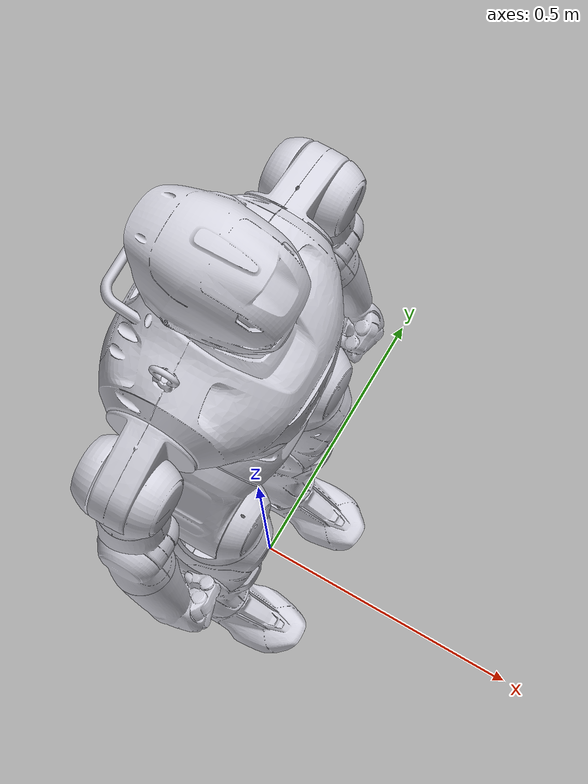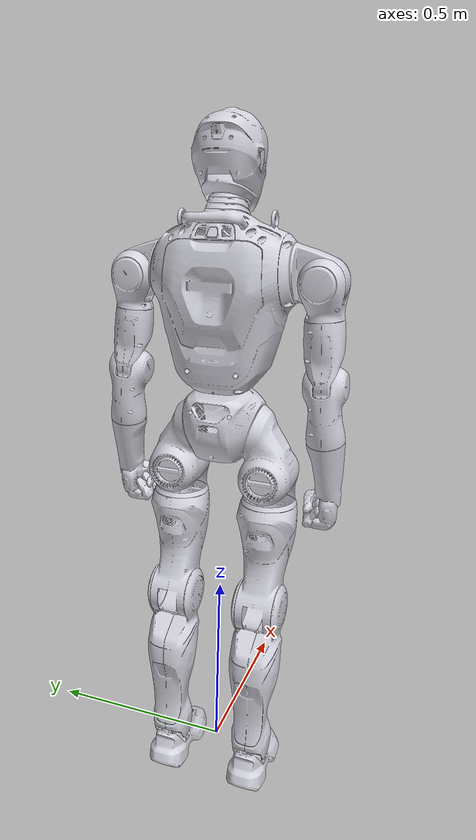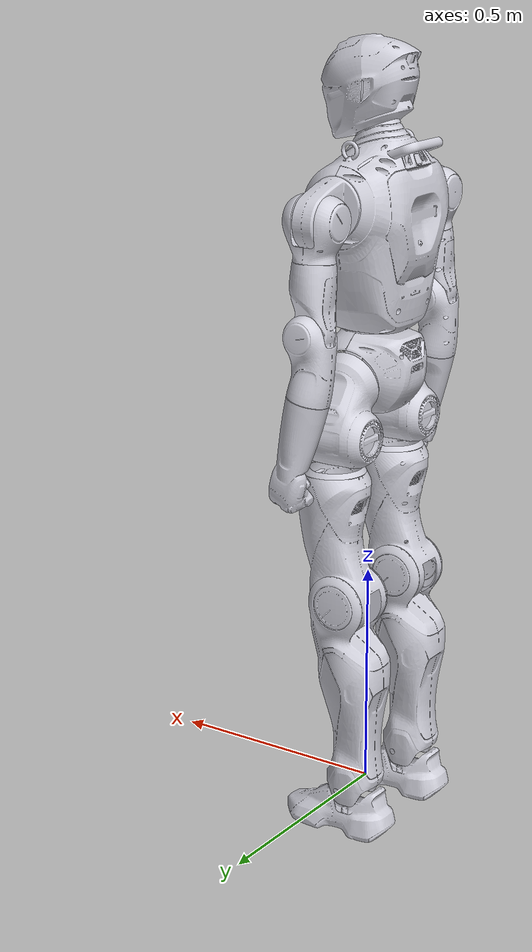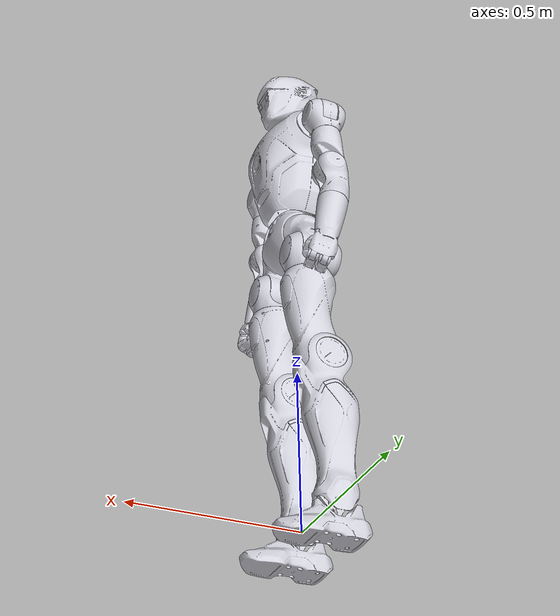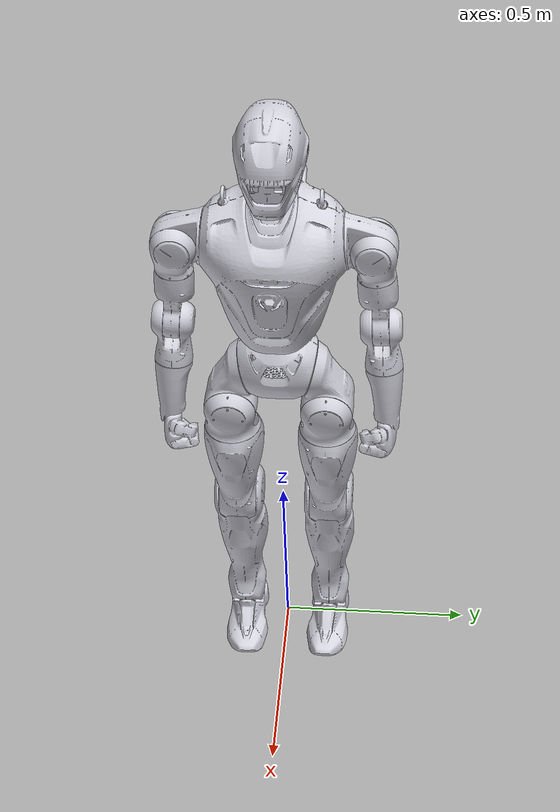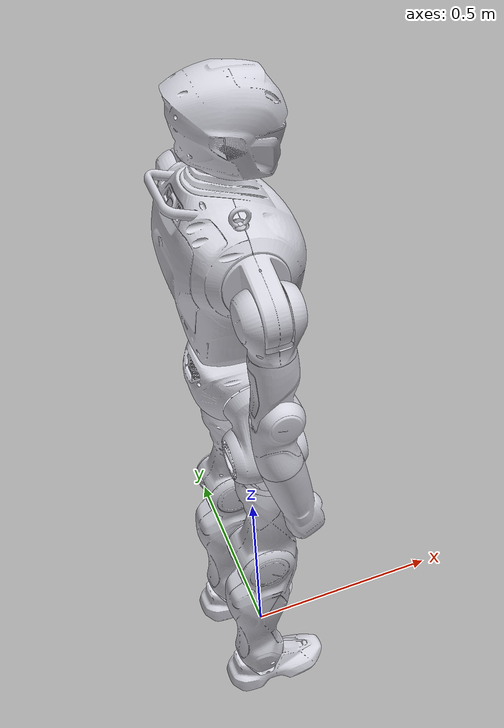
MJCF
<?xml version="1.0" encoding="utf-8"?>
<mujoco model="t800_from_urdf_gmr">
  <compiler angle="radian" autolimits="true" meshdir="../meshes" />
  <option gravity="0 0 -9.81" timestep="0.005" />
  <default>
    <joint damping="1.0" armature="0.01" limited="true" />
    <geom rgba="0.78 0.78 0.82 1" />
    <default class="visual_mesh">
      <geom rgba="0.82 0.82 0.86 1" type="mesh" contype="0" group="2" conaffinity="0" density="0" />
    </default>
    <default class="collision_proxy">
      <geom rgba="1 0.5 0 0" conaffinity="1" group="3" contype="1" />
    </default>
  </default>
  <asset>
    <mesh name="LINK_BASE" file="LINK_BASE.stl" />
    <mesh name="LINK_HIP_PITCH_L" file="LINK_HIP_PITCH_L.stl" />
    <mesh name="LINK_HIP_ROLL_L" file="LINK_HIP_ROLL_L.stl" />
    <mesh name="LINK_HIP_YAW_L" file="LINK_HIP_YAW_L.stl" />
    <mesh name="LINK_KNEE_PITCH_L" file="LINK_KNEE_PITCH_L.stl" />
    <mesh name="LINK_ANKLE_PITCH_L" file="LINK_ANKLE_PITCH_L.stl" />
    <mesh name="LINK_ANKLE_ROLL_L" file="LINK_ANKLE_ROLL_L.stl" />
    <mesh name="LINK_HIP_PITCH_R" file="LINK_HIP_PITCH_R.stl" />
    <mesh name="LINK_HIP_ROLL_R" file="LINK_HIP_ROLL_R.stl" />
    <mesh name="LINK_HIP_YAW_R" file="LINK_HIP_YAW_R.stl" />
    <mesh name="LINK_KNEE_PITCH_R" file="LINK_KNEE_PITCH_R.stl" />
    <mesh name="LINK_ANKLE_PITCH_R" file="LINK_ANKLE_PITCH_R.stl" />
    <mesh name="LINK_ANKLE_ROLL_R" file="LINK_ANKLE_ROLL_R.stl" />
    <mesh name="LINK_TORSO_YAW" file="LINK_TORSO_YAW.stl" />
    <mesh name="LINK_SHOULDER_PITCH_L" file="LINK_SHOULDER_PITCH_L.stl" />
    <mesh name="LINK_SHOULDER_ROLL_L" file="LINK_SHOULDER_ROLL_L.stl" />
    <mesh name="LINK_SHOULDER_YAW_L" file="LINK_SHOULDER_YAW_L.stl" />
    <mesh name="LINK_ELBOW_PITCH_L" file="LINK_ELBOW_PITCH_L.stl" />
    <mesh name="LINK_ELBOW_YAW_L" file="LINK_ELBOW_YAW_L.stl" />
    <mesh name="LINK_SHOULDER_PITCH_R" file="LINK_SHOULDER_PITCH_R.stl" />
    <mesh name="LINK_SHOULDER_ROLL_R" file="LINK_SHOULDER_ROLL_R.stl" />
    <mesh name="LINK_SHOULDER_YAW_R" file="LINK_SHOULDER_YAW_R.stl" />
    <mesh name="LINK_ELBOW_PITCH_R" file="LINK_ELBOW_PITCH_R.stl" />
    <mesh name="LINK_ELBOW_YAW_R" file="LINK_ELBOW_YAW_R.stl" />
    <mesh name="LINK_HEAD_PITCH" file="LINK_HEAD_PITCH.stl" />
    <mesh name="LINK_HEAD_YAW" file="LINK_HEAD_YAW.stl" />
  </asset>
  <worldbody>
    <body name="LINK_BASE" pos="0 0 0.95">
      <freejoint name="root" />
      <geom class="visual_mesh" mesh="LINK_BASE" />
      <geom pos="-0.01664 0 0.020479" size="0.103608 0.096793 0.098939" type="box" class="collision_proxy" />
      <geom size="0.09" pos="-0.01 0 0.01" type="sphere" class="collision_proxy" />
      <body name="LINK_HIP_PITCH_L" pos="0 0.079178 0">
        <inertial pos="0.0061914 0.039194 -0.0989976" quat="0.703048 -0.000940502 -0.0835001 0.706222" mass="3.53619" diaginertia="0.00795732 0.00716152 0.00476425" />
        <joint name="J00_HIP_PITCH_L" pos="0 0 0" axis="0 0.965926 -0.258819" range="-3.316 2.269" actuatorfrcrange="-415 415" />
        <geom class="visual_mesh" mesh="LINK_HIP_PITCH_L" />
        <geom size="0.07" pos="0 0.04 -0.1" class="collision_proxy" type="sphere" />
        <body name="LINK_HIP_ROLL_L" pos="0.004662 0.040322 -0.10752">
          <inertial pos="0.0375309 4.95e-06 -0.0348455" quat="0.954117 -3.76557e-05 0.299433 -0.000109257" mass="0.851442" diaginertia="0.00291994 0.00257237 0.0014565" />
          <joint name="J01_HIP_ROLL_L" pos="0 0 0" axis="1 0 0" range="-1.082 2.059" actuatorfrcrange="-370 370" />
          <body name="LINK_HIP_YAW_L" pos="0.0094616 0 -0.080512">
            <inertial pos="-0.0182984 0.00236123 -0.176347" quat="0.709176 0.0588188 0.0462079 0.701053" mass="7.19482" diaginertia="0.115656 0.11402 0.0107766" />
            <joint name="J02_HIP_YAW_L" pos="0 0 0" axis="0 0 1" range="-1.42245 3.60228" actuatorfrcrange="-222 222" />
            <geom class="visual_mesh" mesh="LINK_HIP_YAW_L" />
            <geom size="0.05 0.06 0.09" pos="0 0.002 -0.1" type="box" class="collision_proxy" />
            <body name="LINK_KNEE_PITCH_L" pos="-0.037707 0 -0.28792">
              <inertial pos="-0.0197449 0.00139162 -0.211907" quat="0.475454 0.0210361 0.0168989 0.879327" mass="5.99503" diaginertia="0.0858454 0.0856511 0.0115715" />
              <joint name="J03_KNEE_PITCH_L" pos="0 0 0" axis="0 1 0" range="0 2.355" actuatorfrcrange="-415 415" />
              <geom class="visual_mesh" mesh="LINK_KNEE_PITCH_L" />
              <geom size="0.08" class="collision_proxy" type="sphere" />
              <geom size="0.055 0.045 0.12" pos="-0.02 0 -0.25" quat="0.9992 0 0.0399893 0" type="box" class="collision_proxy" />
              <body name="LINK_ANKLE_PITCH_L" pos="-0.0027168 0 -0.43867">
                <inertial pos="-3.678e-05 0 -0.00887033" quat="0.707027 -0.0106245 -0.0106245 0.707027" mass="0.144221" diaginertia="8.493e-05 6.78768e-05 3.82432e-05" />
                <joint name="J04_ANKLE_PITCH_L" pos="0 0 0" axis="0 1 0" range="-0.68068 0.68068" actuatorfrcrange="-160 160" />
                <body name="LINK_ANKLE_ROLL_L" pos="0.0011073 0 -0.037928">
                  <inertial pos="-0.00128652 -0.00120557 -0.0229836" quat="0.461914 0.54264 0.559403 0.423375" mass="1.49539" diaginertia="0.00707244 0.00691502 0.00202937" />
                  <joint name="J05_ANKLE_ROLL_L" pos="0 0 0" axis="1 0 0" range="-0.3491 0.1745" actuatorfrcrange="-160 160" />
                  <geom class="visual_mesh" mesh="LINK_ANKLE_ROLL_L" />
                  <geom size="0.13 0.05 0.01" pos="0.02 0.00166 -0.054" type="box" class="collision_proxy" />
                  <body name="LINK_FOOT_L" pos="0 0 -0.06453" />
                </body>
                <geom class="visual_mesh" mesh="LINK_ANKLE_PITCH_L" />
                <geom pos="0.000082 0 -0.01255" size="0.035636 0.0235 0.036419" type="box" class="collision_proxy" />
              </body>
            </body>
          </body>
          <geom class="visual_mesh" mesh="LINK_HIP_ROLL_L" />
          <geom pos="0.012007 -0.000001 -0.008161" size="0.073102 0.070734 0.071838" type="box" class="collision_proxy" />
        </body>
      </body>
      <body name="LINK_HIP_PITCH_R" pos="0 -0.079178 0">
        <inertial pos="0.0061914 -0.039194 -0.0989976" quat="0.706222 -0.0835001 -0.000940502 0.703048" mass="3.53619" diaginertia="0.00795732 0.00716152 0.00476425" />
        <joint name="J06_HIP_PITCH_R" pos="0 0 0" axis="0 0.965926 0.258819" range="-3.316 2.269" actuatorfrcrange="-415 415" />
        <geom class="visual_mesh" mesh="LINK_HIP_PITCH_R" />
        <geom size="0.07" pos="0 -0.04 -0.1" class="collision_proxy" type="sphere" />
        <body name="LINK_HIP_ROLL_R" pos="0.004662 -0.040322 -0.10752">
          <inertial pos="0.0375309 -4.95e-06 -0.0348455" quat="0.954117 3.76557e-05 0.299433 0.000109257" mass="0.851442" diaginertia="0.00291994 0.00257237 0.0014565" />
          <joint name="J07_HIP_ROLL_R" pos="0 0 0" axis="1 0 0" range="-2.059 1.082" actuatorfrcrange="-370 370" />
          <body name="LINK_HIP_YAW_R" pos="0.0094616 0 -0.080512">
            <inertial pos="-0.0182984 -0.00236123 -0.176347" quat="0.701053 0.0462079 0.0588188 0.709176" mass="7.19482" diaginertia="0.115656 0.11402 0.0107766" />
            <joint name="J08_HIP_YAW_R" pos="0 0 0" axis="0 0 1" range="-3.60228 1.42245" actuatorfrcrange="-222 222" />
            <geom class="visual_mesh" mesh="LINK_HIP_YAW_R" />
            <geom size="0.05 0.06 0.09" pos="0 0.002 -0.1" type="box" class="collision_proxy" />
            <body name="LINK_KNEE_PITCH_R" pos="-0.037707 0 -0.28792">
              <inertial pos="-0.0197449 -0.00139162 -0.211907" quat="0.879327 0.0168989 0.0210361 0.475454" mass="5.99503" diaginertia="0.0858454 0.0856511 0.0115715" />
              <joint name="J09_KNEE_PITCH_R" pos="0 0 0" axis="0 1 0" range="0 2.355" actuatorfrcrange="-415 415" />
              <geom class="visual_mesh" mesh="LINK_KNEE_PITCH_R" />
              <geom size="0.08" class="collision_proxy" type="sphere" />
              <geom size="0.055 0.045 0.115" pos="-0.02 0 -0.25" quat="0.9992 0 0.0399893 0" type="box" class="collision_proxy" />
              <body name="LINK_ANKLE_PITCH_R" pos="-0.0027168 0 -0.43867">
                <inertial pos="-3.678e-05 0 -0.00887033" quat="0.707027 -0.0106245 -0.0106245 0.707027" mass="0.144221" diaginertia="8.493e-05 6.78768e-05 3.82432e-05" />
                <joint name="J10_ANKLE_PITCH_R" pos="0 0 0" axis="0 1 0" range="-0.68068 0.68068" actuatorfrcrange="-160 160" />
                <body name="LINK_ANKLE_ROLL_R" pos="0.0011073 0 -0.037928">
                  <inertial pos="-0.00128652 0.00120557 -0.0229836" quat="0.423375 0.559403 0.54264 0.461914" mass="1.49539" diaginertia="0.00707244 0.00691502 0.00202937" />
                  <joint name="J11_ANKLE_ROLL_R" pos="0 0 0" axis="1 0 0" range="-0.1745 0.3491" actuatorfrcrange="-160 160" />
                  <geom class="visual_mesh" mesh="LINK_ANKLE_ROLL_R" />
                  <geom size="0.13 0.05 0.01" pos="0.02 -0.00166 -0.054" type="box" class="collision_proxy" />
                  <body name="LINK_FOOT_R" pos="0 0 -0.06453" />
                </body>
                <geom class="visual_mesh" mesh="LINK_ANKLE_PITCH_R" />
                <geom pos="0.000082 0 -0.01255" size="0.035636 0.0235 0.036419" type="box" class="collision_proxy" />
              </body>
            </body>
          </body>
          <geom class="visual_mesh" mesh="LINK_HIP_ROLL_R" />
          <geom pos="0.012007 0.000001 -0.008161" size="0.073102 0.070734 0.071838" type="box" class="collision_proxy" />
        </body>
      </body>
      <body name="LINK_TORSO_YAW" pos="0 0 0.10384">
        <inertial pos="-0.00880845 -0.0006861 0.222762" quat="0.998368 -0.00027422 -0.0570422 -0.0028246" mass="19.4108" diaginertia="0.256742 0.207512 0.15304" />
        <joint name="J12_TORSO_YAW" pos="0 0 0" axis="0 0 1" range="-4.381 1.2392" actuatorfrcrange="-222 222" />
        <geom class="visual_mesh" mesh="LINK_TORSO_YAW" />
        <geom size="0.09 0.1 0.07" pos="-0.007 -0.001 0.075" type="box" class="collision_proxy" />
        <geom size="0.11 0.14 0.095" pos="-0.007 -0.001 0.25" type="box" class="collision_proxy" />
        <body name="LINK_SHOULDER_PITCH_L" pos="-0.011 0.16303 0.27889">
          <inertial pos="-0.00615457 0.0528418 -0.0124871" quat="0.835175 0.547699 0.0286813 0.0410699" mass="1.76883" diaginertia="0.00240978 0.00213951 0.00130718" />
          <joint name="J13_SHOULDER_PITCH_L" pos="0 0 0" axis="0 0.996779 0.0801989" range="-2.967 2.793" actuatorfrcrange="-160 160" />
          <geom class="visual_mesh" mesh="LINK_SHOULDER_PITCH_L" />
          <geom size="0.06" pos="0 0.065 -0.012" class="collision_proxy" type="sphere" />
          <body name="LINK_SHOULDER_ROLL_L" pos="0 0.062533 -0.015455">
            <inertial pos="-0.00557192 0.00446659 -0.0271293" quat="0.699304 -0.0958375 -0.196856 0.680468" mass="0.682893" diaginertia="0.00216819 0.00159945 0.0014132" />
            <joint name="J14_SHOULDER_ROLL_L" pos="0 0 0" axis="1 0 0" range="-0.384 2.443" actuatorfrcrange="-160 160" />
            <body name="LINK_SHOULDER_YAW_L" pos="3.4602e-05 0.0085246 -0.082712">
              <inertial pos="0.00062214 0.00554981 -0.0898056" quat="0.706399 0.0160146 -0.024757 0.7072" mass="2.55202" diaginertia="0.00997961 0.00983419 0.00114425" />
              <joint name="J15_SHOULDER_YAW_L" pos="0 0 0" axis="0 -0.0714971 0.997441" range="-2.618 2.618" actuatorfrcrange="-160 160" />
              <geom class="visual_mesh" mesh="LINK_SHOULDER_YAW_L" />
              <geom size="0.04 0.04 0.05" pos="0.001 0.005 -0.04" type="box" class="collision_proxy" />
              <body name="LINK_ELBOW_PITCH_L" pos="0.0019252 0.013597 -0.15075">
                <inertial pos="-0.00883497 0.00295203 -0.0733334" quat="0.992911 0.0869004 0.0117583 0.0802349" mass="1.19527" diaginertia="0.00319667 0.00310646 0.00126793" />
                <joint name="J16_ELBOW_PITCH_L" pos="0 0 0" axis="0 0.997441 0.0714971" range="-2.286 0.262" actuatorfrcrange="-160 160" />
                <geom class="visual_mesh" mesh="LINK_ELBOW_PITCH_L" />
                <geom size="0.05" class="collision_proxy" type="sphere" />
                <body name="LINK_ELBOW_YAW_L" pos="-0.0022091 0.0094362 -0.13182">
                  <inertial pos="0.0130246 0.00448716 -0.0585067" quat="0.702488 -0.0450693 -0.106628 0.702218" mass="1.07982" diaginertia="0.00215594 0.00202244 0.000854076" />
                  <joint name="J17_ELBOW_YAW_L" pos="0 0 0" axis="-0.216439 -0.0698028 0.973797" range="-2.618 2.618" actuatorfrcrange="-52 52" />
                  <geom class="visual_mesh" mesh="LINK_ELBOW_YAW_L" />
                  <geom size="0.04 0.04 0.07" pos="0.014 0.005 -0.05" quat="0.995004 0 -0.0998334 0" type="box" class="collision_proxy" />
                  <geom size="0.05" pos="0.055436 0.0034855 -0.192222" class="collision_proxy" type="sphere" />
                  <body name="LINK_WRIST_END_L" pos="0.029436 0.0124855 -0.13222151" />
                </body>
              </body>
            </body>
            <geom class="visual_mesh" mesh="LINK_SHOULDER_ROLL_L" />
            <geom pos="0.0 0.000886 -0.016108" size="0.060949 0.052878 0.069315" type="box" class="collision_proxy" />
          </body>
        </body>
        <body name="LINK_SHOULDER_PITCH_R" pos="-0.011 -0.16303 0.27889">
          <inertial pos="-0.00615457 -0.0528418 -0.0124871" quat="0.547699 0.835175 -0.0410699 -0.0286813" mass="1.76883" diaginertia="0.00240978 0.00213951 0.00130718" />
          <joint name="J20_SHOULDER_PITCH_R" pos="0 0 0" axis="0 0.996779 -0.0801989" range="-2.967 2.793" actuatorfrcrange="-160 160" />
          <geom class="visual_mesh" mesh="LINK_SHOULDER_PITCH_R" />
          <geom size="0.06" pos="0 -0.065 -0.012" class="collision_proxy" type="sphere" />
          <body name="LINK_SHOULDER_ROLL_R" pos="0 -0.062533 -0.015455">
            <inertial pos="-0.00557192 -0.00446659 -0.0271293" quat="0.680468 -0.196856 -0.0958375 0.699304" mass="0.682893" diaginertia="0.00216819 0.00159945 0.0014132" />
            <joint name="J21_SHOULDER_ROLL_R" pos="0 0 0" axis="1 0 0" range="-2.443 0.384" actuatorfrcrange="-160 160" />
            <body name="LINK_SHOULDER_YAW_R" pos="3.4602e-05 -0.0085246 -0.082712">
              <inertial pos="0.00062214 -0.00554981 -0.0898056" quat="0.7072 -0.024757 0.0160146 0.706399" mass="2.55202" diaginertia="0.00997961 0.00983419 0.00114425" />
              <joint name="J22_SHOULDER_YAW_R" pos="0 0 0" axis="0 0.0714971 0.997441" range="-2.618 2.618" actuatorfrcrange="-160 160" />
              <geom class="visual_mesh" mesh="LINK_SHOULDER_YAW_R" />
              <geom size="0.04 0.04 0.05" pos="0.001 -0.005 -0.04" type="box" class="collision_proxy" />
              <body name="LINK_ELBOW_PITCH_R" pos="0.0019252 -0.013597 -0.15075">
                <inertial pos="-0.00883497 -0.00295203 -0.0733334" quat="0.992911 -0.0869004 0.0117583 -0.0802349" mass="1.19527" diaginertia="0.00319667 0.00310646 0.00126793" />
                <joint name="J23_ELBOW_PITCH_R" pos="0 0 0" axis="0 0.997441 -0.0714971" range="-2.286 0.262" actuatorfrcrange="-160 160" />
                <geom class="visual_mesh" mesh="LINK_ELBOW_PITCH_R" />
                <geom size="0.05" class="collision_proxy" type="sphere" />
                <body name="LINK_ELBOW_YAW_R" pos="-0.0022091 -0.0094362 -0.13182">
                  <inertial pos="0.0130246 -0.00448716 -0.0585067" quat="0.702218 -0.106628 -0.0450693 0.702488" mass="1.07982" diaginertia="0.00215594 0.00202244 0.000854076" />
                  <joint name="J24_ELBOW_YAW_R" pos="0 0 0" axis="-0.216439 0.0698028 0.973797" range="-2.618 2.618" actuatorfrcrange="-52 52" />
                  <geom class="visual_mesh" mesh="LINK_ELBOW_YAW_R" />
                  <geom size="0.04 0.04 0.07" pos="0.014 -0.005 -0.05" quat="0.995004 0 -0.0998334 0" type="box" class="collision_proxy" />
                  <geom size="0.05" pos="0.055436 -0.0034855 -0.192222" class="collision_proxy" type="sphere" />
                  <body name="LINK_WRIST_END_R" pos="0.029436 -0.0124855 -0.13222151" />
                </body>
              </body>
            </body>
            <geom class="visual_mesh" mesh="LINK_SHOULDER_ROLL_R" />
            <geom pos="0.0 -0.000886 -0.016108" size="0.060949 0.052878 0.069315" type="box" class="collision_proxy" />
          </body>
        </body>
        <body name="LINK_HEAD_PITCH" pos="-0.0113 0 0.38604">
          <inertial pos="0.00012689 0.00010014 0.0672953" quat="0.999045 -0.0436093 0.00159275 0.00209103" mass="0.707966" diaginertia="0.000660474 0.000564278 0.000455089" />
          <joint name="J27_HEAD_PITCH" pos="0 0 0" axis="0 1 0" range="-0.523 0.523" actuatorfrcrange="-52 52" />
          <body name="LINK_HEAD_YAW" pos="0 0 0.040199">
            <inertial pos="0.0181326 4.92e-06 0.0928944" quat="0.338158 0.621066 0.621323 0.337468" mass="1.72377" diaginertia="0.00848513 0.00826129 0.0065396" />
            <joint name="J28_HEAD_YAW" pos="0 0 0" axis="0 0 1" range="-1.222 1.222" actuatorfrcrange="-52 52" />
            <geom class="visual_mesh" mesh="LINK_HEAD_YAW" />
            <geom size="0.08" pos="0.018 0 0.08" class="collision_proxy" type="sphere" />
          </body>
          <geom class="visual_mesh" mesh="LINK_HEAD_PITCH" />
          <geom pos="-0.000051 0.001 -0.000013" size="0.019699 0.0325 0.019737" type="box" class="collision_proxy" />
        </body>
      </body>
    </body>
  </worldbody>
  <actuator>
    <motor name="J00_HIP_PITCH_L" joint="J00_HIP_PITCH_L" gear="1" />
    <motor name="J01_HIP_ROLL_L" joint="J01_HIP_ROLL_L" gear="1" />
    <motor name="J02_HIP_YAW_L" joint="J02_HIP_YAW_L" gear="1" />
    <motor name="J03_KNEE_PITCH_L" joint="J03_KNEE_PITCH_L" gear="1" />
    <motor name="J04_ANKLE_PITCH_L" joint="J04_ANKLE_PITCH_L" gear="1" />
    <motor name="J05_ANKLE_ROLL_L" joint="J05_ANKLE_ROLL_L" gear="1" />
    <motor name="J06_HIP_PITCH_R" joint="J06_HIP_PITCH_R" gear="1" />
    <motor name="J07_HIP_ROLL_R" joint="J07_HIP_ROLL_R" gear="1" />
    <motor name="J08_HIP_YAW_R" joint="J08_HIP_YAW_R" gear="1" />
    <motor name="J09_KNEE_PITCH_R" joint="J09_KNEE_PITCH_R" gear="1" />
    <motor name="J10_ANKLE_PITCH_R" joint="J10_ANKLE_PITCH_R" gear="1" />
    <motor name="J11_ANKLE_ROLL_R" joint="J11_ANKLE_ROLL_R" gear="1" />
    <motor name="J12_TORSO_YAW" joint="J12_TORSO_YAW" gear="1" />
    <motor name="J13_SHOULDER_PITCH_L" joint="J13_SHOULDER_PITCH_L" gear="1" />
    <motor name="J14_SHOULDER_ROLL_L" joint="J14_SHOULDER_ROLL_L" gear="1" />
    <motor name="J15_SHOULDER_YAW_L" joint="J15_SHOULDER_YAW_L" gear="1" />
    <motor name="J16_ELBOW_PITCH_L" joint="J16_ELBOW_PITCH_L" gear="1" />
    <motor name="J17_ELBOW_YAW_L" joint="J17_ELBOW_YAW_L" gear="1" />
    <motor name="J20_SHOULDER_PITCH_R" joint="J20_SHOULDER_PITCH_R" gear="1" />
    <motor name="J21_SHOULDER_ROLL_R" joint="J21_SHOULDER_ROLL_R" gear="1" />
    <motor name="J22_SHOULDER_YAW_R" joint="J22_SHOULDER_YAW_R" gear="1" />
    <motor name="J23_ELBOW_PITCH_R" joint="J23_ELBOW_PITCH_R" gear="1" />
    <motor name="J24_ELBOW_YAW_R" joint="J24_ELBOW_YAW_R" gear="1" />
    <motor name="J27_HEAD_PITCH" joint="J27_HEAD_PITCH" gear="1" />
    <motor name="J28_HEAD_YAW" joint="J28_HEAD_YAW" gear="1" />
  </actuator>
</mujoco>
